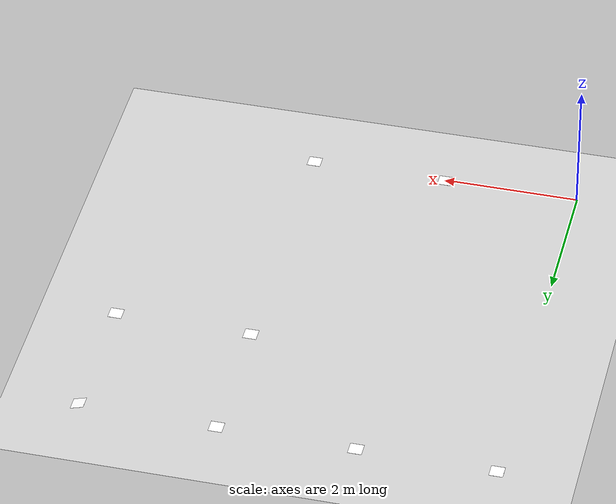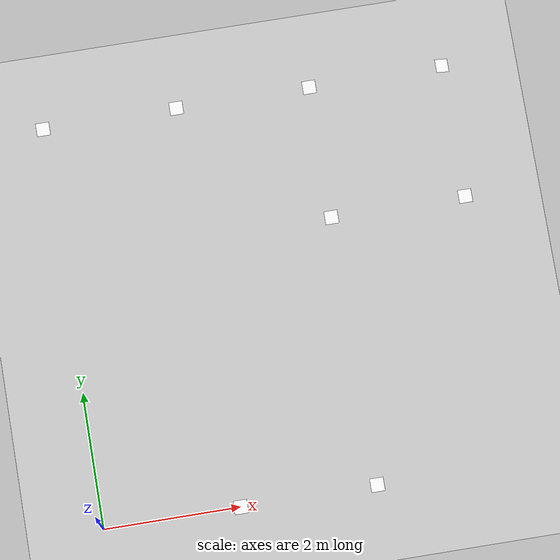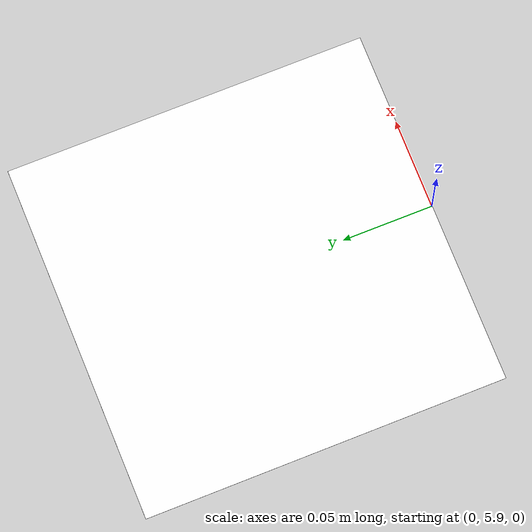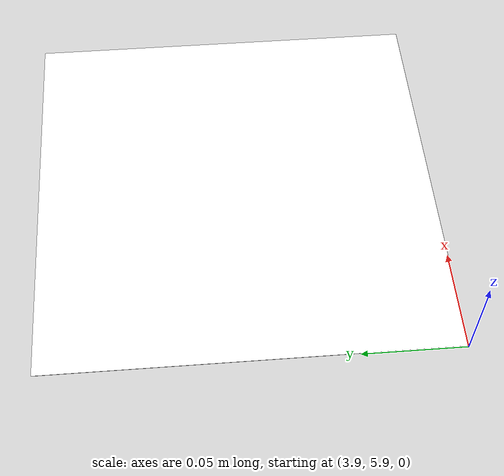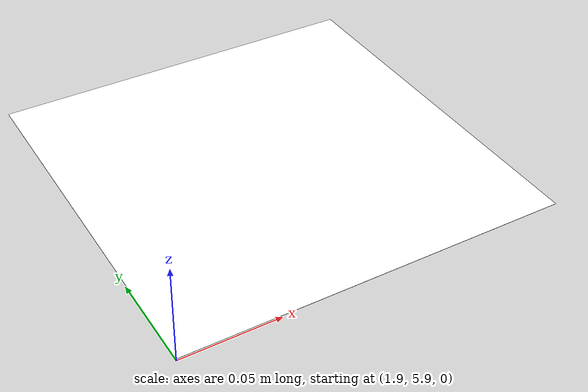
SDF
<sdf version="1.9">
 <world name="aruco">
  <physics type="ode">
   <max_step_size>0.004</max_step_size>
   <real_time_factor>1.0</real_time_factor>
   <real_time_update_rate>250</real_time_update_rate>
  </physics>
  <plugin name="gz::sim::systems::Physics" filename="gz-sim-physics-system"/>
  <plugin name="gz::sim::systems::UserCommands" filename="gz-sim-user-commands-system"/>
  <plugin name="gz::sim::systems::SceneBroadcaster" filename="gz-sim-scene-broadcaster-system"/>
  <plugin name="gz::sim::systems::Contact" filename="gz-sim-contact-system"/>
  <plugin name="gz::sim::systems::Imu" filename="gz-sim-imu-system"/>
  <plugin name="gz::sim::systems::AirPressure" filename="gz-sim-air-pressure-system"/>
  <plugin name="gz::sim::systems::ApplyLinkWrench" filename="gz-sim-apply-link-wrench-system"/>
  <plugin name="gz::sim::systems::NavSat" filename="gz-sim-navsat-system"/>
  <plugin name="gz::sim::systems::Sensors" filename="gz-sim-sensors-system">
   <render_engine>ogre2</render_engine>
  </plugin>
  <gravity>0 0 -9.8</gravity>
  <magnetic_field>6e-06 2.3e-05 -4.2e-05</magnetic_field>
  <atmosphere type="adiabatic"/>
  <scene>
   <grid>false</grid>
   <ambient>0.4 0.4 0.4 1</ambient>
   <background>0.7 0.7 0.7 1</background>
   <shadows>true</shadows>
  </scene>
  <model name="ground_plane">
   <static>true</static>
   <link name="link">
    <collision name="collision">
     <geometry><plane><normal>0 0 1</normal><size>1 1</size></plane></geometry>
    </collision>
    <visual name="visual">
     <geometry><plane><normal>0 0 1</normal><size>100 100</size></plane></geometry>
     <material>
      <ambient>0.8 0.8 0.8 1</ambient>
      <diffuse>0.8 0.8 0.8 1</diffuse>
      <specular>0.8 0.8 0.8 1</specular>
     </material>
    </visual>
    <inertial>
     <mass>1</mass>
     <inertia><ixx>1</ixx><ixy>0</ixy><ixz>0</ixz><iyy>1</iyy><iyz>0</iyz><izz>1</izz></inertia>
    </inertial>
   </link>
  </model>
  <light name="sunUTC" type="directional">
   <pose>0 0 500 0 -0 0</pose>
   <intensity>1</intensity>
   <direction>0.001 0.625 -0.78</direction>
   <diffuse>0.904 0.904 0.904 1</diffuse>
   <specular>0.271 0.271 0.271 1</specular>
   <attenuation><range>2000</range><linear>0</linear><constant>1</constant><quadratic>0</quadratic></attenuation>
   <spot><inner_angle>0</inner_angle><outer_angle>0</outer_angle><falloff>0</falloff></spot>
  </light>
  <spherical_coordinates>
   <surface_model>EARTH_WGS84</surface_model>
   <world_frame_orientation>ENU</world_frame_orientation>
   <latitude_deg>47.397971057728974</latitude_deg>
   <longitude_deg>8.546163739800146</longitude_deg>
   <elevation>0</elevation>
  </spherical_coordinates>
  <include><uri>model://aruco_marker_1</uri><pose>2 0 0.001 0 0 0</pose><name>arucotag_1</name></include>
  <include><uri>model://aruco_marker_2</uri><pose>4 0 0.001 0 0 0</pose><name>arucotag_2</name></include>
  <include><uri>model://aruco_marker_10</uri><pose>4 4 0.001 0 0 0</pose><name>arucotag_10</name></include>
  <include><uri>model://aruco_marker_11</uri><pose>6 4 0.001 0 0 0</pose><name>arucotag_11</name></include>
  <include><uri>model://aruco_marker_12</uri><pose>0 6 0.001 0 0 0</pose><name>arucotag_12</name></include>
  <include><uri>model://aruco_marker_13</uri><pose>2 6 0.001 0 0 0</pose><name>arucotag_13</name></include>
  <include><uri>model://aruco_marker_14</uri><pose>4 6 0.001 0 0 0</pose><name>arucotag_14</name></include>
  <include>
   <uri>model://aruco_marker_15</uri>
   <pose>6 6 0.035 0 0.3 0</pose>
   <name>arucotag_15_tilt_5</name>
  </include>
 </world>
</sdf>

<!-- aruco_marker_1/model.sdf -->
<sdf version='1.9'>
  <model name='arucotag'>
    <static>true</static>
    <pose>0 0 0.001 0 0 0</pose>
    <link name='base'>
      <visual name='base_visual'>
        <geometry>
          <plane>
            <normal>0 0 1</normal>
            <size>0.2 0.2</size>
          </plane>
        </geometry>
        <material>
          <diffuse>1 1 1 1</diffuse>
          <specular>0.4 0.4 0.4 1</specular>
          <pbr>
            <metal>
              <albedo_map>model://arucotag/4x4_1000-1.png</albedo_map>
            </metal>
          </pbr>
        </material>
      </visual>
    </link>
  </model>
</sdf>

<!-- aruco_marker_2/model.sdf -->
<sdf version='1.9'>
  <model name='arucotag'>
    <static>true</static>
    <pose>0 0 0.001 0 0 0</pose>
    <link name='base'>
      <visual name='base_visual'>
        <geometry>
          <plane>
            <normal>0 0 1</normal>
            <size>0.2 0.2</size>
          </plane>
        </geometry>
        <material>
          <diffuse>1 1 1 1</diffuse>
          <specular>0.4 0.4 0.4 1</specular>
          <pbr>
            <metal>
              <albedo_map>model://arucotag/4x4_1000-2.png</albedo_map>
            </metal>
          </pbr>
        </material>
      </visual>
    </link>
  </model>
</sdf>

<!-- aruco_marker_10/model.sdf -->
<sdf version='1.9'>
  <model name='arucotag'>
    <static>true</static>
    <pose>0 0 0.001 0 0 0</pose>
    <link name='base'>
      <visual name='base_visual'>
        <geometry>
          <plane>
            <normal>0 0 1</normal>
            <size>0.2 0.2</size>
          </plane>
        </geometry>
        <material>
          <diffuse>1 1 1 1</diffuse>
          <specular>0.4 0.4 0.4 1</specular>
          <pbr>
            <metal>
              <albedo_map>model://arucotag/4x4_1000-10.png</albedo_map>
            </metal>
          </pbr>
        </material>
      </visual>
    </link>
  </model>
</sdf>

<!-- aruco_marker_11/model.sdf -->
<sdf version='1.9'>
  <model name='arucotag'>
    <static>true</static>
    <pose>0 0 0.001 0 0 0</pose>
    <link name='base'>
      <visual name='base_visual'>
        <geometry>
          <plane>
            <normal>0 0 1</normal>
            <size>0.2 0.2</size>
          </plane>
        </geometry>
        <material>
          <diffuse>1 1 1 1</diffuse>
          <specular>0.4 0.4 0.4 1</specular>
          <pbr>
            <metal>
              <albedo_map>model://arucotag/4x4_1000-11.png</albedo_map>
            </metal>
          </pbr>
        </material>
      </visual>
    </link>
  </model>
</sdf>

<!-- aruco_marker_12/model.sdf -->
<sdf version='1.9'>
  <model name='arucotag'>
    <static>true</static>
    <pose>0 0 0.001 0 0 0</pose>
    <link name='base'>
      <visual name='base_visual'>
        <geometry>
          <plane>
            <normal>0 0 1</normal>
            <size>0.2 0.2</size>
          </plane>
        </geometry>
        <material>
          <diffuse>1 1 1 1</diffuse>
          <specular>0.4 0.4 0.4 1</specular>
          <pbr>
            <metal>
              <albedo_map>model://arucotag/4x4_1000-12.png</albedo_map>
            </metal>
          </pbr>
        </material>
      </visual>
    </link>
  </model>
</sdf>

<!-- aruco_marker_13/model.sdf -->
<sdf version='1.9'>
  <model name='arucotag'>
    <static>true</static>
    <pose>0 0 0.001 0 0 0</pose>
    <link name='base'>
      <visual name='base_visual'>
        <geometry>
          <plane>
            <normal>0 0 1</normal>
            <size>0.2 0.2</size>
          </plane>
        </geometry>
        <material>
          <diffuse>1 1 1 1</diffuse>
          <specular>0.4 0.4 0.4 1</specular>
          <pbr>
            <metal>
              <albedo_map>model://arucotag/4x4_1000-13.png</albedo_map>
            </metal>
          </pbr>
        </material>
      </visual>
    </link>
  </model>
</sdf>

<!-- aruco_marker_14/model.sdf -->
<sdf version='1.9'>
  <model name='arucotag'>
    <static>true</static>
    <pose>0 0 0.001 0 0 0</pose>
    <link name='base'>
      <visual name='base_visual'>
        <geometry>
          <plane>
            <normal>0 0 1</normal>
            <size>0.2 0.2</size>
          </plane>
        </geometry>
        <material>
          <diffuse>1 1 1 1</diffuse>
          <specular>0.4 0.4 0.4 1</specular>
          <pbr>
            <metal>
              <albedo_map>model://arucotag/4x4_1000-14.png</albedo_map>
            </metal>
          </pbr>
        </material>
      </visual>
    </link>
  </model>
</sdf>

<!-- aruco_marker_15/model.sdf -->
<sdf version='1.9'>
  <model name='arucotag'>
    <static>true</static>
    <pose>0 0 0.001 0 0 0</pose>
    <link name='base'>
      <visual name='base_visual'>
        <geometry>
          <plane>
            <normal>0 0 1</normal>
            <size>0.2 0.2</size>
          </plane>
        </geometry>
        <material>
          <diffuse>1 1 1 1</diffuse>
          <specular>0.4 0.4 0.4 1</specular>
          <pbr>
            <metal>
              <albedo_map>model://arucotag/4x4_1000-15.png</albedo_map>
            </metal>
          </pbr>
        </material>
      </visual>
    </link>
  </model>
</sdf>
